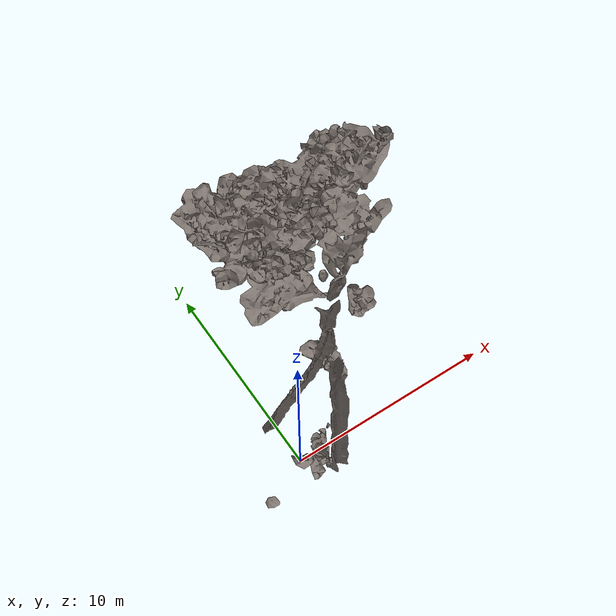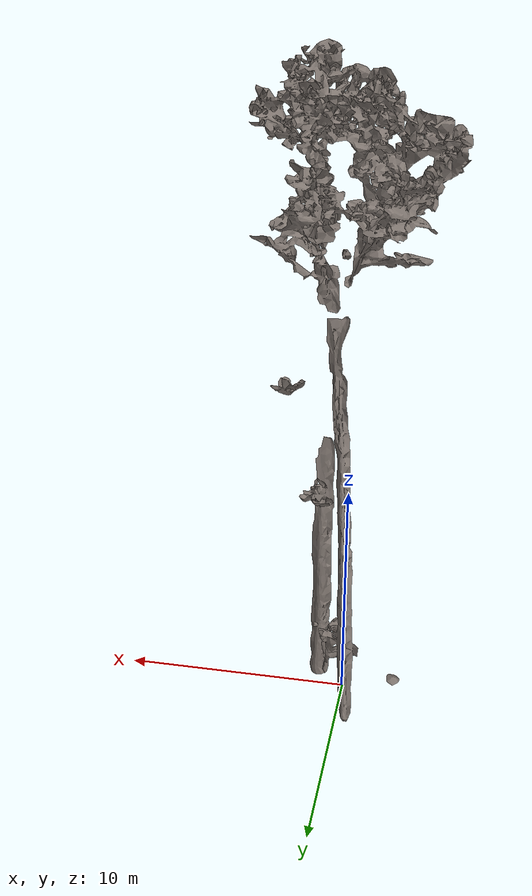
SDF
<?xml version="1.0" ?>
<sdf version="1.6">
  <model name="tree12">
    <static>true</static>
    <link name="tree_link">

      <visual name="tree_visual">
        <geometry>
          <mesh>
            <uri>model://tree12/meshes/tree_mesh.dae</uri>
          </mesh>
        </geometry>
      </visual>

      <collision name="tree_collision">
        <geometry>
          <mesh>
            <uri>model://tree12/meshes/tree_collision.stl</uri>
          </mesh>
        </geometry>
      </collision>

    </link>
  </model>
</sdf>
